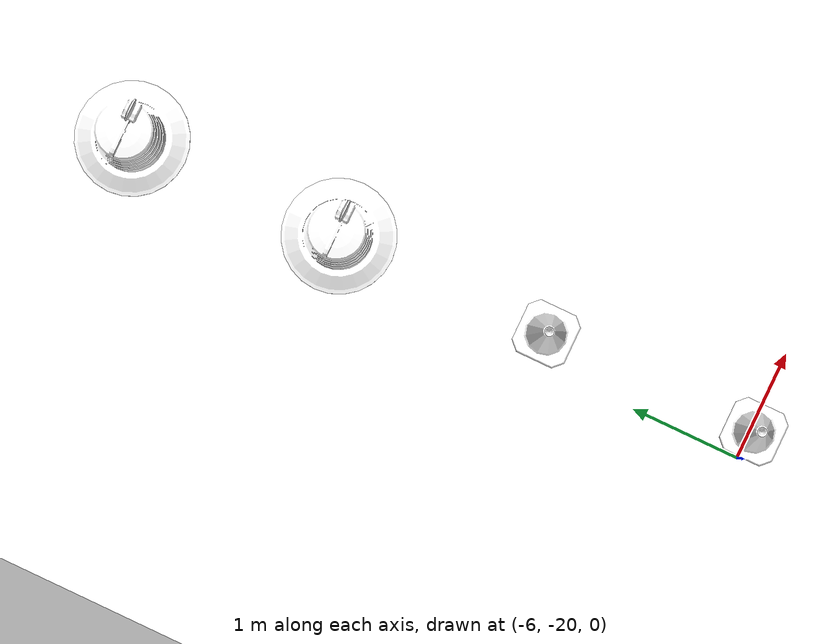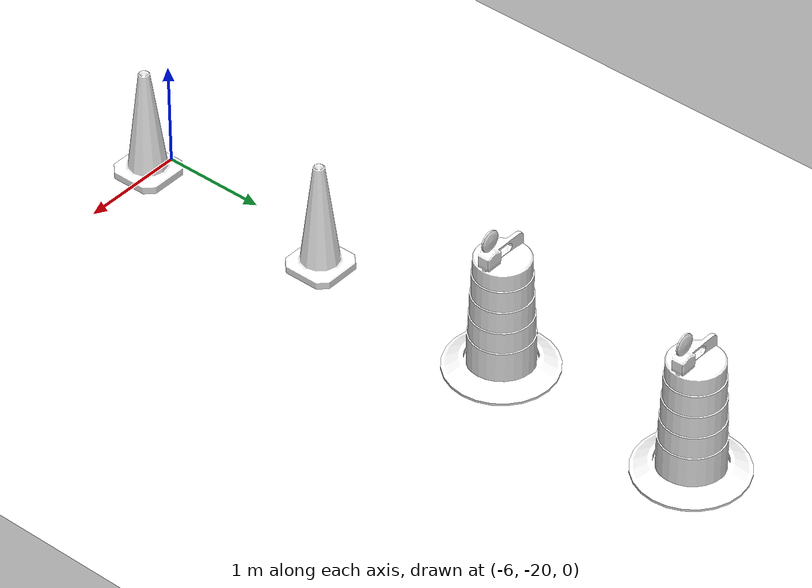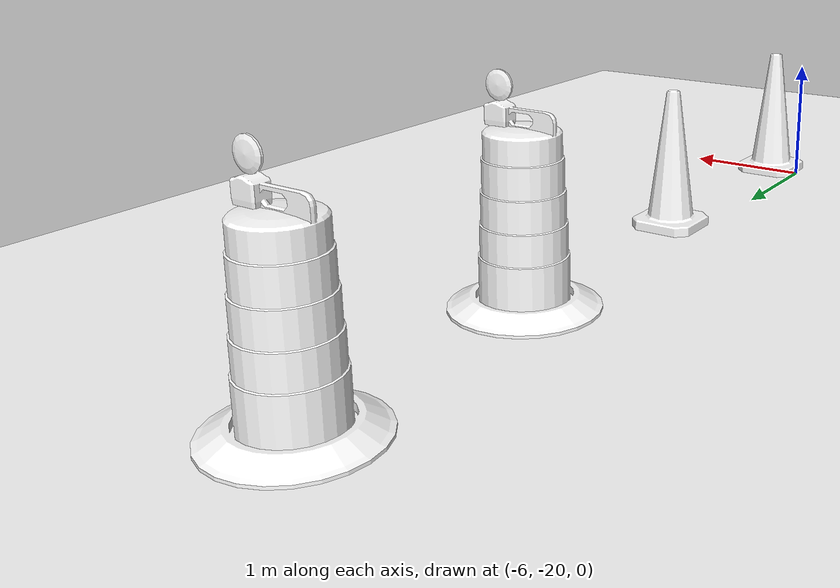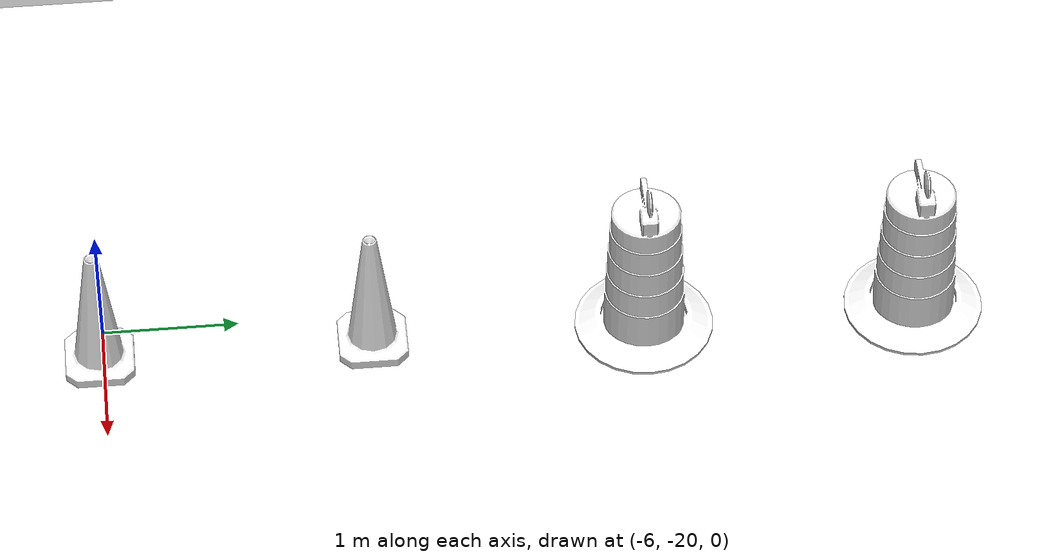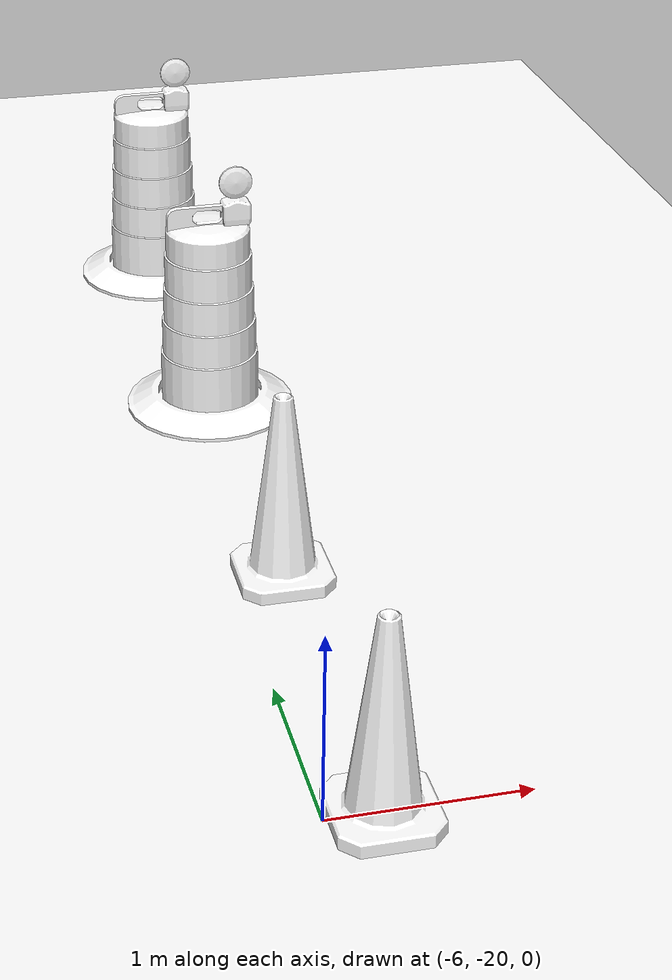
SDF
<sdf version='1.10'>
  <world name='IGVC_AutoNav'>
    <plugin name='gz::sim::systems::Physics' filename='gz-sim-physics-system'/>
    <plugin name='gz::sim::systems::UserCommands' filename='gz-sim-user-commands-system'/>
    <plugin name='gz::sim::systems::SceneBroadcaster' filename='gz-sim-scene-broadcaster-system'/>
    <plugin name='gz::sim::systems::Contact' filename='gz-sim-contact-system'/>
    <plugin name='gz::sim::systems::NavSat' filename='gz-sim-navsat-system'/>
    <spherical_coordinates>
      <surface_model>EARTH_WGS84</surface_model>
      <world_frame_orientation>ENU</world_frame_orientation>
      <latitude_deg>47.478949999999998</latitude_deg>
      <longitude_deg>19.057784999999999</longitude_deg>
      <elevation>0</elevation>
      <heading_deg>0</heading_deg>
    </spherical_coordinates>
    <plugin name='gz::sim::systems::Sensors' filename='gz-sim-sensors-system'>
      <render_engine>ogre2</render_engine>
    </plugin>
    <plugin name='gz::sim::systems::Imu' filename='gz-sim-imu-system'/>
    <plugin name='gz::sim::systems::NavSat' filename='gz-sim-navsat-system'/>
    <gravity>0 0 -9.8000000000000007</gravity>
    <magnetic_field>6.0000000000000002e-06 2.3e-05 -4.1999999999999998e-05</magnetic_field>
    <atmosphere type='adiabatic'/>
    <physics type='ode'>
      <max_step_size>0.001</max_step_size>
      <real_time_factor>1</real_time_factor>
      <real_time_update_rate>1000</real_time_update_rate>
    </physics>
    <scene>
      <ambient>0.400000006 0.400000006 0.400000006 1</ambient>
      <background>0.699999988 0.699999988 0.699999988 1</background>
      <shadows>true</shadows>
    </scene>
    <wind/>
    <spherical_coordinates>
      <surface_model>EARTH_WGS84</surface_model>
      <latitude_deg>0</latitude_deg>
      <longitude_deg>0</longitude_deg>
      <elevation>0</elevation>
      <heading_deg>0</heading_deg>
    </spherical_coordinates>
    <gui fullscreen='false'>
      <camera name='user_camera'>
        <pose>5.5319000000000003 -9.7176899999999993 6.8489500000000003 1.4729852828118626e-17 0.34179700000000013 0.53604000000000007</pose>
        <view_controller>orbit</view_controller>
        <projection_type>perspective</projection_type>
      </camera>
    </gui>

    <include>
      <uri>model://asphalt_ground_plane</uri>
      <name>ground_plane</name>
      <pose>0 0 0 0 0 0</pose>
    </include>

    <include> <uri>model://construction_barrel</uri> <name>barrel_0</name> <pose>-5.7300000000000004 -14.029999999999999 0 0 0 0</pose> </include>
    <include> <uri>model://construction_barrel</uri> <name>barrel_1</name> <pose>-5.7300000000000004 -16.029999999999999 0 0 0 0</pose> </include>
    <include> <uri>model://construction_cone</uri> <name>cone_0</name> <pose>-5.7300000000000004 -18.029999999999999 0 0 0 0</pose> </include>
    <include> <uri>model://construction_cone</uri> <name>cone_1</name> <pose>-5.7300000000000004 -20.029999999999999 0 0 0 0</pose> </include>

    <light name='sun' type='directional'>
      <pose>0 0 10 0 0 0</pose>
      <cast_shadows>true</cast_shadows>
      <intensity>1</intensity>
      <direction>-0.5 0.10000000000000001 -0.90000000000000002</direction>
      <diffuse>0.800000012 0.800000012 0.800000012 1</diffuse>
      <specular>0.200000003 0.200000003 0.200000003 1</specular>
      <attenuation>
        <range>1000</range>
        <linear>0.01</linear>
        <constant>0.90000000000000002</constant>
        <quadratic>0.001</quadratic>
      </attenuation>
      <spot>
        <inner_angle>0</inner_angle>
        <outer_angle>0</outer_angle>
        <falloff>0</falloff>
      </spot>
    </light>
  </world>
</sdf>

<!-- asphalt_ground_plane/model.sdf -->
<sdf version="1.10">
  <model name="asphalt_ground_plane">
    <static>true</static>
    <link name="link">
      <!-- keep local pose on the link -->
      <pose>0 0 0 0 0 0</pose>

      <!-- inertial -->
      <inertial>
        <pose>0 0 0 0 0 0</pose>
        <mass>1</mass>
        <inertia>
          <ixx>1</ixx>
          <ixy>0</ixy>
          <ixz>0</ixz>
          <iyy>1</iyy>
          <iyz>0</iyz>
          <izz>1</izz>
        </inertia>
      </inertial>

      <!-- collision -->
      <collision name="collision">
        <geometry>
          <plane>
            <normal>0 0 1</normal>
            <size>64.748999999999995 67.341999999999999</size>
          </plane>
        </geometry>
        <max_contacts>10</max_contacts>
        <surface>
          <friction>
            <ode>
              <mu>100</mu>
              <mu2>50</mu2>
            </ode>
            <torsional>
              <ode />
            </torsional>
          </friction>
          <contact>
            <ode />
          </contact>
          <bounce />
        </surface>
      </collision>

      <!-- visual -->
      <visual name="visual">
        <cast_shadows>false</cast_shadows>
        <geometry>
          <plane>
            <normal>0 0 1</normal>
            <size>64.748999999999995 67.341999999999999</size>
          </plane>
        </geometry>
        <material>
          <diffuse>1 1 1 1</diffuse>
          <specular>1 1 1 1</specular>
          <pbr>
            <metal>
              <albedo_map>file://media/materials/textures/better_lanes.png</albedo_map>
            </metal>
          </pbr>
        </material>
      </visual>

      <self_collide>false</self_collide>
      <enable_wind>false</enable_wind>
      <kinematic>false</kinematic>
    </link>
  </model>
</sdf>

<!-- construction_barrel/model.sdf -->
<sdf version="1.10">
  <model name="construction_barrel">
    <static>false</static>
    <link name="link">
      <pose>0 0 0 0 0 0</pose>

      <inertial>
        <pose>0 0 0.40000000000000002 0 0 0</pose>
        <mass>500</mass>
        <inertia>
          <ixx>51.209600000000002</ixx>
          <iyy>51.209600000000002</iyy>
          <izz>25</izz>
          <ixy>0</ixy>
          <ixz>0</ixz>
          <iyz>0</iyz>
        </inertia>
      </inertial>

      <collision name="collision">
        <geometry>
          <mesh>
            <uri>model://construction_barrel/meshes/construction_barrel.dae</uri>
          </mesh>
        </geometry>
        <max_contacts>10</max_contacts>
        <surface>
          <contact>
            <ode/>
          </contact>
          <bounce/>
          <friction>
            <torsional>
              <ode/>
            </torsional>
            <ode/>
          </friction>
        </surface>
      </collision>

      <visual name="visual">
        <geometry>
          <mesh>
            <uri>model://construction_barrel/meshes/construction_barrel.dae</uri>
          </mesh>
        </geometry>
        <material>
          <ambient>1 1 1 1</ambient>
          <diffuse>1 1 1 1</diffuse>
          <pbr>
            <metal>
              <albedo_map>file://model://construction_barrel/materials/textures/Construction_Barrel_Diffuse.png</albedo_map>
              <roughness>0.75</roughness>
              <metalness>0.0</metalness>
            </metal>
          </pbr>
        </material>
      </visual>

      <self_collide>false</self_collide>
      <enable_wind>false</enable_wind>
      <kinematic>false</kinematic>
    </link>
  </model>
</sdf>

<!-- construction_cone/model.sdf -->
<sdf version="1.10">
  <model name="construction_cone">
    <static>false</static>

    <link name="link">
      <!-- local pose -->
      <pose>0 0 0 0 0 0</pose>

      <!-- inertia -->
      <inertial>
        <pose>0 0 0 0 0 0</pose>
        <mass>1</mass>
        <inertia>
          <ixx>1</ixx>
          <ixy>0</ixy>
          <ixz>0</ixz>
          <iyy>1</iyy>
          <iyz>0</iyz>
          <izz>1</izz>
        </inertia>
      </inertial>

      <!-- collision -->
      <collision name="collision">
        <geometry>
          <mesh>
            <scale>10 10 10</scale>
            <uri>model://construction_cone/meshes/construction_cone.dae</uri>
          </mesh>
        </geometry>
        <max_contacts>10</max_contacts>
        <surface>
          <contact><ode/></contact>
          <bounce/>
          <friction>
            <torsional><ode/></torsional>
            <ode/>
          </friction>
        </surface>
      </collision>

      <!-- visual -->
      <visual name="visual">
        <geometry>
          <mesh>
            <scale>10 10 10</scale>
            <uri>model://construction_cone/meshes/construction_cone.dae</uri>
          </mesh>
        </geometry>
        <material>
          <ambient>1 1 1 1</ambient>
          <diffuse>1 1 1 1</diffuse>
          <pbr>
            <metal>
              <albedo_map>file://model://construction_cone/materials/textures/Construction_Cone_Diffuse.png</albedo_map>
              <roughness>0.75</roughness>
              <metalness>0.0</metalness>
            </metal>
          </pbr>
        </material>
      </visual>

      <self_collide>false</self_collide>
      <enable_wind>false</enable_wind>
      <kinematic>false</kinematic>
    </link>

  </model>
</sdf>
